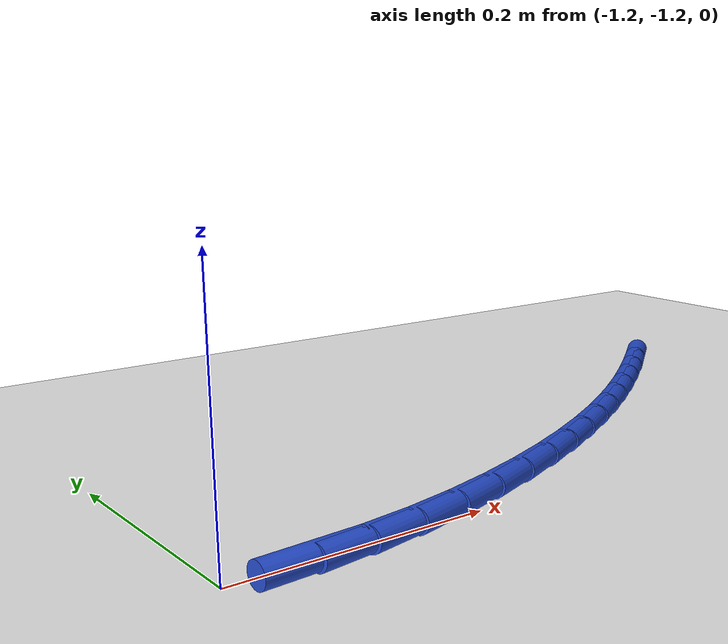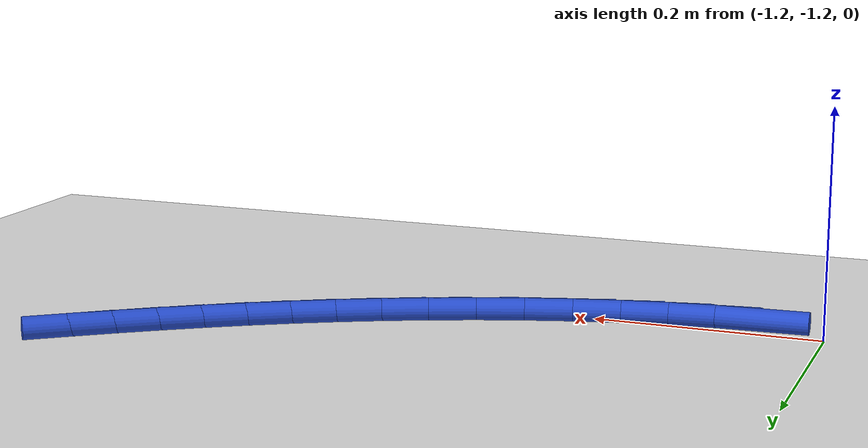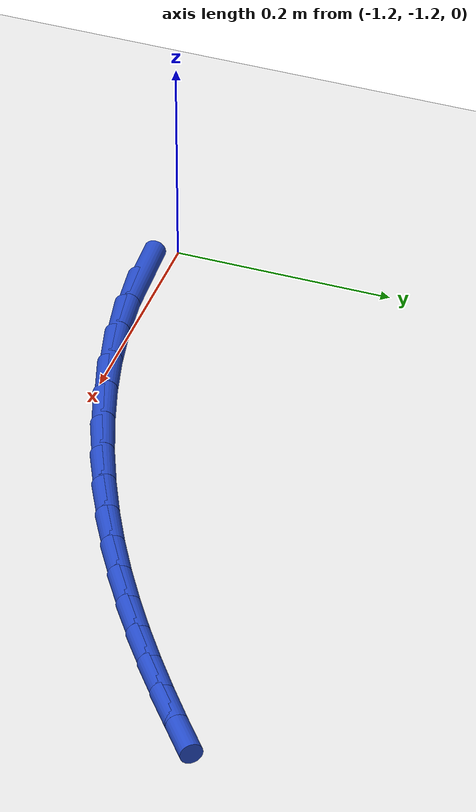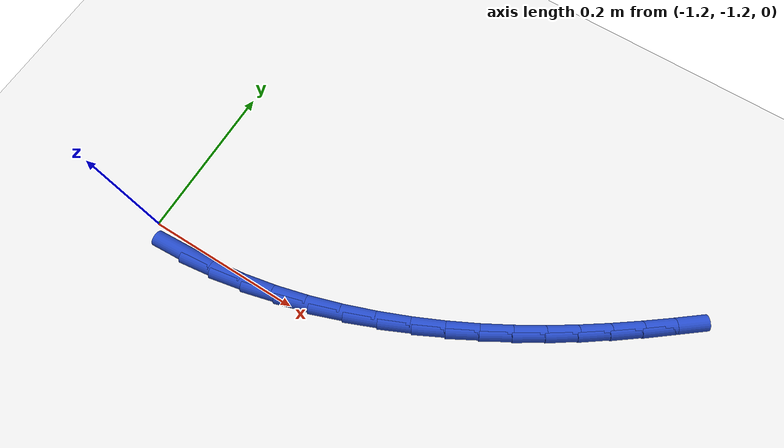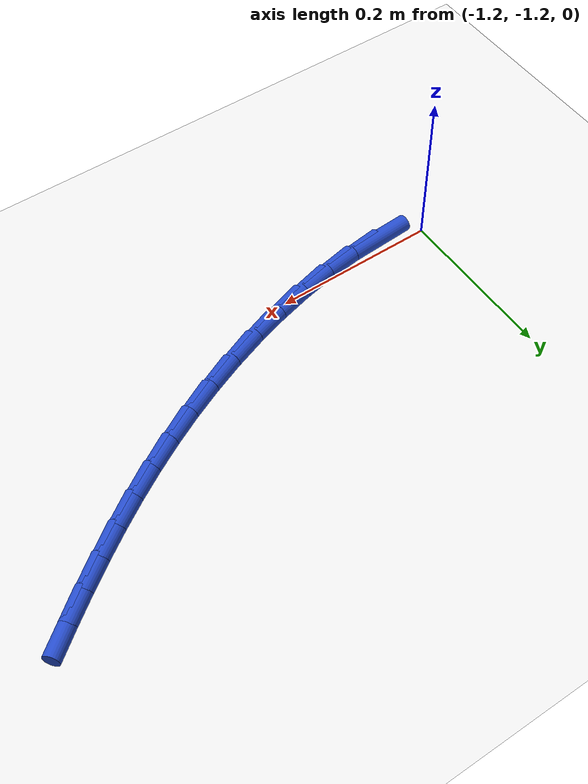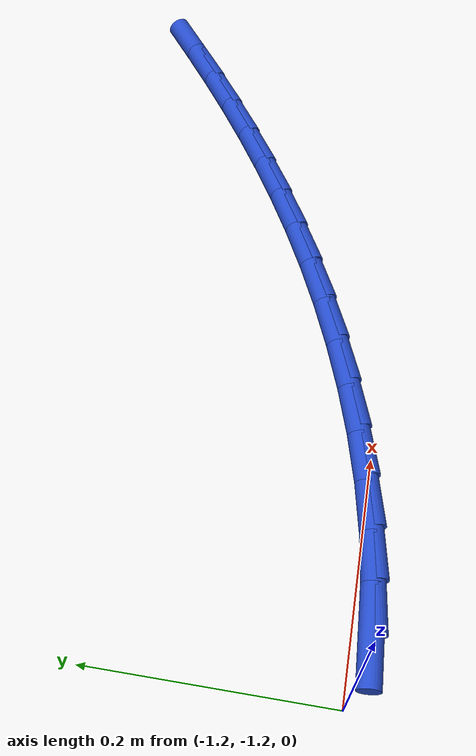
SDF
<sdf version="1.6">
 <world name="default">
  <model name="ground_plane">
   <static>1</static>
   <link name="link">
    <collision name="collision">
     <geometry><plane><normal>0 0 1</normal><size>100 100</size></plane></geometry>
     <surface><friction><ode><mu>100</mu><mu2>50</mu2></ode></friction></surface>
    </collision>
    <visual name="visual">
     <cast_shadows>0</cast_shadows>
     <geometry><plane><normal>0 0 1</normal><size>100 100</size></plane></geometry>
     <material>
      <script><uri>file://media/materials/scripts/gazebo.material</uri><name>Gazebo/WhiteGlow</name></script>
     </material>
    </visual>
   </link>
  </model>
  <model name="line">
   <link name="link_134">
    <pose>-1.1452621120000843 -1.2138737198399205 0.01 0 1.57 0.05934023036409986</pose>
    <collision name="collision">
     <geometry><cylinder><radius>0.01</radius><length>0.08</length></cylinder></geometry>
    </collision>
    <visual name="visual">
     <material>
      <script><name>Gazebo/Blue</name><uri>file://media/materials/scripts/gazebo.material</uri></script>
     </material>
     <geometry><cylinder><radius>0.01</radius><length>0.08</length></cylinder></geometry>
    </visual>
   </link>
   <link name="link_135">
    <pose>-1.1048435688845444 -1.2114724550236617 0.01 0 1.57 0.13355942098207182</pose>
    <collision name="collision">
     <geometry><cylinder><radius>0.01</radius><length>0.08</length></cylinder></geometry>
    </collision>
    <visual name="visual">
     <material>
      <script><name>Gazebo/Blue</name><uri>file://media/materials/scripts/gazebo.material</uri></script>
     </material>
     <geometry><cylinder><radius>0.01</radius><length>0.08</length></cylinder></geometry>
    </visual>
   </link>
   <link name="link_136">
    <pose>-1.063770013953522 -1.2059538418275992 0.01 0 1.57 0.1976764918997561</pose>
    <collision name="collision">
     <geometry><cylinder><radius>0.01</radius><length>0.08</length></cylinder></geometry>
    </collision>
    <visual name="visual">
     <material>
      <script><name>Gazebo/Blue</name><uri>file://media/materials/scripts/gazebo.material</uri></script>
     </material>
     <geometry><cylinder><radius>0.01</radius><length>0.08</length></cylinder></geometry>
    </visual>
   </link>
   <link name="link_137">
    <pose>-1.0224514525467236 -1.1976780568511205 0.01 0 1.57 0.2537500973386869</pose>
    <collision name="collision">
     <geometry><cylinder><radius>0.01</radius><length>0.08</length></cylinder></geometry>
    </collision>
    <visual name="visual">
     <material>
      <script><name>Gazebo/Blue</name><uri>file://media/materials/scripts/gazebo.material</uri></script>
     </material>
     <geometry><cylinder><radius>0.01</radius><length>0.08</length></cylinder></geometry>
    </visual>
   </link>
   <link name="link_138">
    <pose>-0.9812978900038594 -1.1870052766936137 0.01 0 1.57 0.30353131181062176</pose>
    <collision name="collision">
     <geometry><cylinder><radius>0.01</radius><length>0.08</length></cylinder></geometry>
    </collision>
    <visual name="visual">
     <material>
      <script><name>Gazebo/Blue</name><uri>file://media/materials/scripts/gazebo.material</uri></script>
     </material>
     <geometry><cylinder><radius>0.01</radius><length>0.08</length></cylinder></geometry>
    </visual>
   </link>
   <link name="link_139">
    <pose>-0.9407193316646366 -1.1742956779544675 0.01 0 1.57 0.3485163820757789</pose>
    <collision name="collision">
     <geometry><cylinder><radius>0.01</radius><length>0.08</length></cylinder></geometry>
    </collision>
    <visual name="visual">
     <material>
      <script><name>Gazebo/Blue</name><uri>file://media/materials/scripts/gazebo.material</uri></script>
     </material>
     <geometry><cylinder><radius>0.01</radius><length>0.08</length></cylinder></geometry>
    </visual>
   </link>
   <link name="link_140">
    <pose>-0.9011257828687634 -1.15990943723307 0.01 0 1.57 0.39006630039084594</pose>
    <collision name="collision">
     <geometry><cylinder><radius>0.01</radius><length>0.08</length></cylinder></geometry>
    </collision>
    <visual name="visual">
     <material>
      <script><name>Gazebo/Blue</name><uri>file://media/materials/scripts/gazebo.material</uri></script>
     </material>
     <geometry><cylinder><radius>0.01</radius><length>0.08</length></cylinder></geometry>
    </visual>
   </link>
   <link name="link_141">
    <pose>-0.8629096128613579 -1.1441975307680388 0.01 0 1.57 0.42977052282459477</pose>
    <collision name="collision">
     <geometry><cylinder><radius>0.01</radius><length>0.08</length></cylinder></geometry>
    </collision>
    <visual name="visual">
     <material>
      <script><name>Gazebo/Blue</name><uri>file://media/materials/scripts/gazebo.material</uri></script>
     </material>
     <geometry><cylinder><radius>0.01</radius><length>0.08</length></cylinder></geometry>
    </visual>
   </link>
   <link name="link_142">
    <pose>-0.8261730228557344 -1.1273595605488385 0.01 0 1.57 0.4679821195683176</pose>
    <collision name="collision">
     <geometry><cylinder><radius>0.01</radius><length>0.08</length></cylinder></geometry>
    </collision>
    <visual name="visual">
     <material>
      <script><name>Gazebo/Blue</name><uri>file://media/materials/scripts/gazebo.material</uri></script>
     </material>
     <geometry><cylinder><radius>0.01</radius><length>0.08</length></cylinder></geometry>
    </visual>
   </link>
   <link name="link_143">
    <pose>-0.7907805889078635 -1.109471164772129 0.01 0 1.57 0.5042332151293458</pose>
    <collision name="collision">
     <geometry><cylinder><radius>0.01</radius><length>0.08</length></cylinder></geometry>
    </collision>
    <visual name="visual">
     <material>
      <script><name>Gazebo/Blue</name><uri>file://media/materials/scripts/gazebo.material</uri></script>
     </material>
     <geometry><cylinder><radius>0.01</radius><length>0.08</length></cylinder></geometry>
    </visual>
   </link>
   <link name="link_144">
    <pose>-0.7565898911883183 -1.090604332035775 0.01 0 1.57 0.5380737578614354</pose>
    <collision name="collision">
     <geometry><cylinder><radius>0.01</radius><length>0.08</length></cylinder></geometry>
    </collision>
    <visual name="visual">
     <material>
      <script><name>Gazebo/Blue</name><uri>file://media/materials/scripts/gazebo.material</uri></script>
     </material>
     <geometry><cylinder><radius>0.01</radius><length>0.08</length></cylinder></geometry>
    </visual>
   </link>
   <link name="link_145">
    <pose>-0.723458509867672 -1.070831050937641 0.01 0 1.57 0.5691033087923234</pose>
    <collision name="collision">
     <geometry><cylinder><radius>0.01</radius><length>0.08</length></cylinder></geometry>
    </collision>
    <visual name="visual">
     <material>
      <script><name>Gazebo/Blue</name><uri>file://media/materials/scripts/gazebo.material</uri></script>
     </material>
     <geometry><cylinder><radius>0.01</radius><length>0.08</length></cylinder></geometry>
    </visual>
   </link>
   <link name="link_146">
    <pose>-0.6912440251164987 -1.0502233100755936 0.01 0 1.57 0.5969810288437011</pose>
    <collision name="collision">
     <geometry><cylinder><radius>0.01</radius><length>0.08</length></cylinder></geometry>
    </collision>
    <visual name="visual">
     <material>
      <script><name>Gazebo/Blue</name><uri>file://media/materials/scripts/gazebo.material</uri></script>
     </material>
     <geometry><cylinder><radius>0.01</radius><length>0.08</length></cylinder></geometry>
    </visual>
   </link>
   <link name="link_147">
    <pose>-0.6598040171053721 -1.0288530980474972 0.01 0 1.57 0.6214309423556968</pose>
    <collision name="collision">
     <geometry><cylinder><radius>0.01</radius><length>0.08</length></cylinder></geometry>
    </collision>
    <visual name="visual">
     <material>
      <script><name>Gazebo/Blue</name><uri>file://media/materials/scripts/gazebo.material</uri></script>
     </material>
     <geometry><cylinder><radius>0.01</radius><length>0.08</length></cylinder></geometry>
    </visual>
   </link>
   <link name="link_148">
    <pose>-0.6289960660048651 -1.006792403451217 0.01 0 1.57 0.642242925750058</pose>
    <collision name="collision">
     <geometry><cylinder><radius>0.01</radius><length>0.08</length></cylinder></geometry>
    </collision>
    <visual name="visual">
     <material>
      <script><name>Gazebo/Blue</name><uri>file://media/materials/scripts/gazebo.material</uri></script>
     </material>
     <geometry><cylinder><radius>0.01</radius><length>0.08</length></cylinder></geometry>
    </visual>
   </link>
   <link name="link_149">
    <pose>-0.5986777519855528 -0.984113214884619 0.01 0 1.57 0.6592703348393963</pose>
    <collision name="collision">
     <geometry><cylinder><radius>0.01</radius><length>0.08</length></cylinder></geometry>
    </collision>
    <visual name="visual">
     <material>
      <script><name>Gazebo/Blue</name><uri>file://media/materials/scripts/gazebo.material</uri></script>
     </material>
     <geometry><cylinder><radius>0.01</radius><length>0.08</length></cylinder></geometry>
    </visual>
   </link>
  </model>
 </world>
</sdf>
